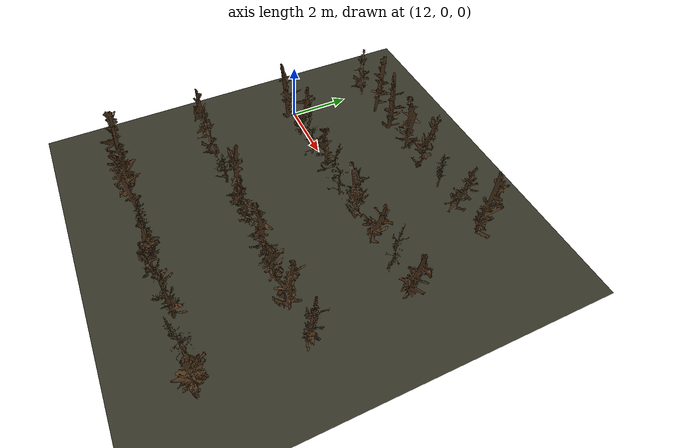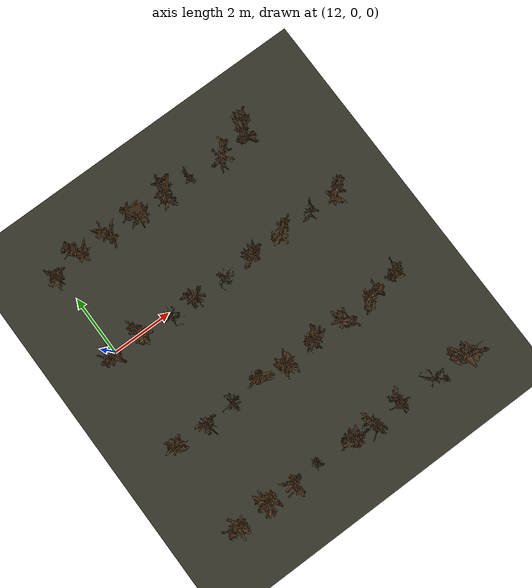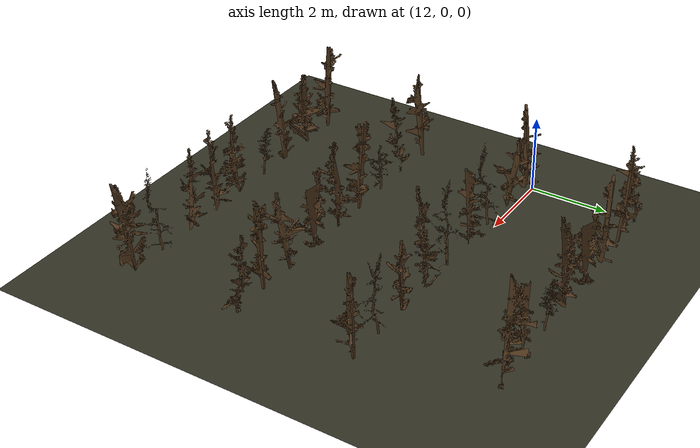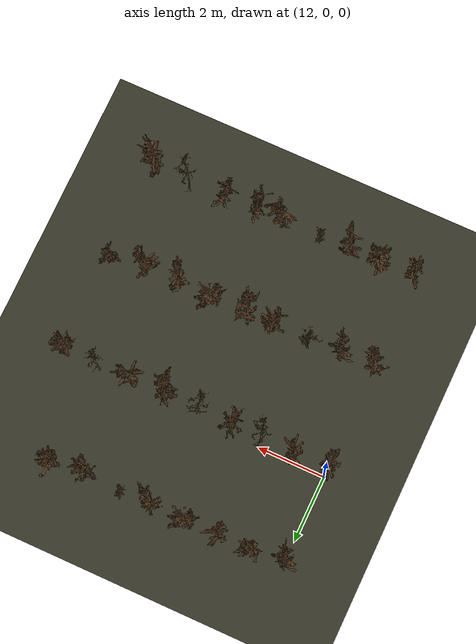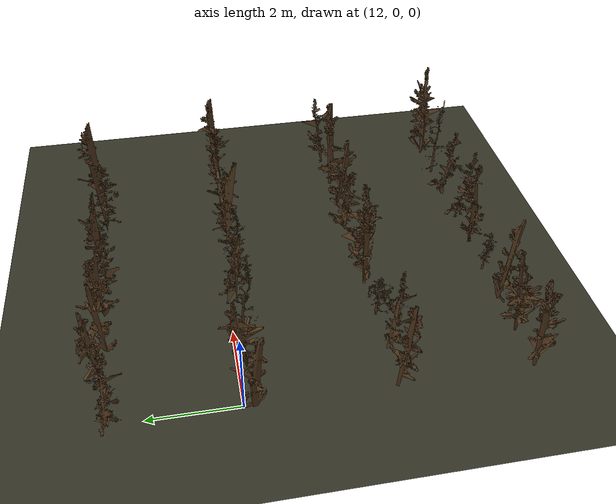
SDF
<sdf version="1.9">
 <world name="orchard_dormant_world">
  <model name="ground_plane">
   <static>true</static>
   <link name="link">
    <collision name="collision">
     <geometry><plane><normal>0 0 1</normal><size>500 500</size></plane></geometry>
    </collision>
    <visual name="visual">
     <geometry><plane><normal>0 0 1</normal><size>500 500</size></plane></geometry>
     <material><ambient>0.2 0.2 0.15 1</ambient><diffuse>0.2 0.2 0.15 1</diffuse></material>
    </visual>
   </link>
  </model>
  <model name="tree250">
   <static>true</static>
   <pose>19.000 2.800 -0.1 0 0 3.817</pose>
   <link name="link">
    <collision name="collision">
     <geometry>
      <mesh>
       <uri>file:///home/administrator/ros2/orchard_navigation_rl_ws/src/orchard_worlds/models/orchard_model/tree3_collision.stl</uri>
      </mesh>
     </geometry>
    </collision>
    <visual name="visual">
     <geometry>
      <mesh>
       <uri>file:///home/administrator/ros2/orchard_navigation_rl_ws/src/orchard_worlds/models/orchard_model/tree3.stl</uri>
      </mesh>
     </geometry>
     <material><ambient>0.3 0.2 0.1 1</ambient><diffuse>0.3 0.2 0.1 1</diffuse></material>
    </visual>
   </link>
  </model>
  <model name="tree251">
   <static>true</static>
   <pose>18.000 2.800 -0.1 0 0 1.763</pose>
   <link name="link">
    <collision name="collision">
     <geometry>
      <mesh>
       <uri>file:///home/administrator/ros2/orchard_navigation_rl_ws/src/orchard_worlds/models/orchard_model/tree1_collision.stl</uri>
      </mesh>
     </geometry>
    </collision>
    <visual name="visual">
     <geometry>
      <mesh>
       <uri>file:///home/administrator/ros2/orchard_navigation_rl_ws/src/orchard_worlds/models/orchard_model/tree1.stl</uri>
      </mesh>
     </geometry>
     <material><ambient>0.3 0.2 0.1 1</ambient><diffuse>0.3 0.2 0.1 1</diffuse></material>
    </visual>
   </link>
  </model>
  <model name="tree252">
   <static>true</static>
   <pose>17.000 2.800 -0.1 0 0 5.477</pose>
   <link name="link">
    <collision name="collision">
     <geometry>
      <mesh>
       <uri>file:///home/administrator/ros2/orchard_navigation_rl_ws/src/orchard_worlds/models/orchard_model/tree4_collision.stl</uri>
      </mesh>
     </geometry>
    </collision>
    <visual name="visual">
     <geometry>
      <mesh>
       <uri>file:///home/administrator/ros2/orchard_navigation_rl_ws/src/orchard_worlds/models/orchard_model/tree4.stl</uri>
      </mesh>
     </geometry>
     <material><ambient>0.3 0.2 0.1 1</ambient><diffuse>0.3 0.2 0.1 1</diffuse></material>
    </visual>
   </link>
  </model>
  <model name="tree253">
   <static>true</static>
   <pose>16.000 2.800 -0.1 0 0 1.793</pose>
   <link name="link">
    <collision name="collision">
     <geometry>
      <mesh>
       <uri>file:///home/administrator/ros2/orchard_navigation_rl_ws/src/orchard_worlds/models/orchard_model/tree5_collision.stl</uri>
      </mesh>
     </geometry>
    </collision>
    <visual name="visual">
     <geometry>
      <mesh>
       <uri>file:///home/administrator/ros2/orchard_navigation_rl_ws/src/orchard_worlds/models/orchard_model/tree5.stl</uri>
      </mesh>
     </geometry>
     <material><ambient>0.3 0.2 0.1 1</ambient><diffuse>0.3 0.2 0.1 1</diffuse></material>
    </visual>
   </link>
  </model>
  <model name="tree254">
   <static>true</static>
   <pose>15.000 2.800 -0.1 0 0 5.613</pose>
   <link name="link">
    <collision name="collision">
     <geometry>
      <mesh>
       <uri>file:///home/administrator/ros2/orchard_navigation_rl_ws/src/orchard_worlds/models/orchard_model/tree11_collision.stl</uri>
      </mesh>
     </geometry>
    </collision>
    <visual name="visual">
     <geometry>
      <mesh>
       <uri>file:///home/administrator/ros2/orchard_navigation_rl_ws/src/orchard_worlds/models/orchard_model/tree11.stl</uri>
      </mesh>
     </geometry>
     <material><ambient>0.3 0.2 0.1 1</ambient><diffuse>0.3 0.2 0.1 1</diffuse></material>
    </visual>
   </link>
  </model>
  <model name="tree255">
   <static>true</static>
   <pose>14.000 2.800 -0.1 0 0 5.559</pose>
   <link name="link">
    <collision name="collision">
     <geometry>
      <mesh>
       <uri>file:///home/administrator/ros2/orchard_navigation_rl_ws/src/orchard_worlds/models/orchard_model/tree13_collision.stl</uri>
      </mesh>
     </geometry>
    </collision>
    <visual name="visual">
     <geometry>
      <mesh>
       <uri>file:///home/administrator/ros2/orchard_navigation_rl_ws/src/orchard_worlds/models/orchard_model/tree13.stl</uri>
      </mesh>
     </geometry>
     <material><ambient>0.3 0.2 0.1 1</ambient><diffuse>0.3 0.2 0.1 1</diffuse></material>
    </visual>
   </link>
  </model>
  <model name="tree256">
   <static>true</static>
   <pose>13.000 2.800 -0.1 0 0 5.093</pose>
   <link name="link">
    <collision name="collision">
     <geometry>
      <mesh>
       <uri>file:///home/administrator/ros2/orchard_navigation_rl_ws/src/orchard_worlds/models/orchard_model/tree15_collision.stl</uri>
      </mesh>
     </geometry>
    </collision>
    <visual name="visual">
     <geometry>
      <mesh>
       <uri>file:///home/administrator/ros2/orchard_navigation_rl_ws/src/orchard_worlds/models/orchard_model/tree15.stl</uri>
      </mesh>
     </geometry>
     <material><ambient>0.3 0.2 0.1 1</ambient><diffuse>0.3 0.2 0.1 1</diffuse></material>
    </visual>
   </link>
  </model>
  <model name="tree257">
   <static>true</static>
   <pose>12.000 2.800 -0.1 0 0 1.129</pose>
   <link name="link">
    <collision name="collision">
     <geometry>
      <mesh>
       <uri>file:///home/administrator/ros2/orchard_navigation_rl_ws/src/orchard_worlds/models/orchard_model/tree2_collision.stl</uri>
      </mesh>
     </geometry>
    </collision>
    <visual name="visual">
     <geometry>
      <mesh>
       <uri>file:///home/administrator/ros2/orchard_navigation_rl_ws/src/orchard_worlds/models/orchard_model/tree2.stl</uri>
      </mesh>
     </geometry>
     <material><ambient>0.3 0.2 0.1 1</ambient><diffuse>0.3 0.2 0.1 1</diffuse></material>
    </visual>
   </link>
  </model>
  <model name="tree277">
   <static>true</static>
   <pose>20.000 -0.200 -0.1 0 0 3.130</pose>
   <link name="link">
    <collision name="collision">
     <geometry>
      <mesh>
       <uri>file:///home/administrator/ros2/orchard_navigation_rl_ws/src/orchard_worlds/models/orchard_model/tree15_collision.stl</uri>
      </mesh>
     </geometry>
    </collision>
    <visual name="visual">
     <geometry>
      <mesh>
       <uri>file:///home/administrator/ros2/orchard_navigation_rl_ws/src/orchard_worlds/models/orchard_model/tree15.stl</uri>
      </mesh>
     </geometry>
     <material><ambient>0.3 0.2 0.1 1</ambient><diffuse>0.3 0.2 0.1 1</diffuse></material>
    </visual>
   </link>
  </model>
  <model name="tree278">
   <static>true</static>
   <pose>19.000 -0.200 -0.1 0 0 3.643</pose>
   <link name="link">
    <collision name="collision">
     <geometry>
      <mesh>
       <uri>file:///home/administrator/ros2/orchard_navigation_rl_ws/src/orchard_worlds/models/orchard_model/tree16_collision.stl</uri>
      </mesh>
     </geometry>
    </collision>
    <visual name="visual">
     <geometry>
      <mesh>
       <uri>file:///home/administrator/ros2/orchard_navigation_rl_ws/src/orchard_worlds/models/orchard_model/tree16.stl</uri>
      </mesh>
     </geometry>
     <material><ambient>0.3 0.2 0.1 1</ambient><diffuse>0.3 0.2 0.1 1</diffuse></material>
    </visual>
   </link>
  </model>
  <model name="tree279">
   <static>true</static>
   <pose>18.000 -0.200 -0.1 0 0 2.620</pose>
   <link name="link">
    <collision name="collision">
     <geometry>
      <mesh>
       <uri>file:///home/administrator/ros2/orchard_navigation_rl_ws/src/orchard_worlds/models/orchard_model/tree8_collision.stl</uri>
      </mesh>
     </geometry>
    </collision>
    <visual name="visual">
     <geometry>
      <mesh>
       <uri>file:///home/administrator/ros2/orchard_navigation_rl_ws/src/orchard_worlds/models/orchard_model/tree8.stl</uri>
      </mesh>
     </geometry>
     <material><ambient>0.3 0.2 0.1 1</ambient><diffuse>0.3 0.2 0.1 1</diffuse></material>
    </visual>
   </link>
  </model>
  <model name="tree280">
   <static>true</static>
   <pose>17.000 -0.200 -0.1 0 0 0.137</pose>
   <link name="link">
    <collision name="collision">
     <geometry>
      <mesh>
       <uri>file:///home/administrator/ros2/orchard_navigation_rl_ws/src/orchard_worlds/models/orchard_model/tree5_collision.stl</uri>
      </mesh>
     </geometry>
    </collision>
    <visual name="visual">
     <geometry>
      <mesh>
       <uri>file:///home/administrator/ros2/orchard_navigation_rl_ws/src/orchard_worlds/models/orchard_model/tree5.stl</uri>
      </mesh>
     </geometry>
     <material><ambient>0.3 0.2 0.1 1</ambient><diffuse>0.3 0.2 0.1 1</diffuse></material>
    </visual>
   </link>
  </model>
  <model name="tree281">
   <static>true</static>
   <pose>16.000 -0.200 -0.1 0 0 5.938</pose>
   <link name="link">
    <collision name="collision">
     <geometry>
      <mesh>
       <uri>file:///home/administrator/ros2/orchard_navigation_rl_ws/src/orchard_worlds/models/orchard_model/tree9_collision.stl</uri>
      </mesh>
     </geometry>
    </collision>
    <visual name="visual">
     <geometry>
      <mesh>
       <uri>file:///home/administrator/ros2/orchard_navigation_rl_ws/src/orchard_worlds/models/orchard_model/tree9.stl</uri>
      </mesh>
     </geometry>
     <material><ambient>0.3 0.2 0.1 1</ambient><diffuse>0.3 0.2 0.1 1</diffuse></material>
    </visual>
   </link>
  </model>
  <model name="tree282">
   <static>true</static>
   <pose>15.000 -0.200 -0.1 0 0 5.526</pose>
   <link name="link">
    <collision name="collision">
     <geometry>
      <mesh>
       <uri>file:///home/administrator/ros2/orchard_navigation_rl_ws/src/orchard_worlds/models/orchard_model/tree1_collision.stl</uri>
      </mesh>
     </geometry>
    </collision>
    <visual name="visual">
     <geometry>
      <mesh>
       <uri>file:///home/administrator/ros2/orchard_navigation_rl_ws/src/orchard_worlds/models/orchard_model/tree1.stl</uri>
      </mesh>
     </geometry>
     <material><ambient>0.3 0.2 0.1 1</ambient><diffuse>0.3 0.2 0.1 1</diffuse></material>
    </visual>
   </link>
  </model>
  <model name="tree283">
   <static>true</static>
   <pose>14.000 -0.200 -0.1 0 0 0.678</pose>
   <link name="link">
    <collision name="collision">
     <geometry>
      <mesh>
       <uri>file:///home/administrator/ros2/orchard_navigation_rl_ws/src/orchard_worlds/models/orchard_model/tree9_collision.stl</uri>
      </mesh>
     </geometry>
    </collision>
    <visual name="visual">
     <geometry>
      <mesh>
       <uri>file:///home/administrator/ros2/orchard_navigation_rl_ws/src/orchard_worlds/models/orchard_model/tree9.stl</uri>
      </mesh>
     </geometry>
     <material><ambient>0.3 0.2 0.1 1</ambient><diffuse>0.3 0.2 0.1 1</diffuse></material>
    </visual>
   </link>
  </model>
  <model name="tree284">
   <static>true</static>
   <pose>13.000 -0.200 -0.1 0 0 3.822</pose>
   <link name="link">
    <collision name="collision">
     <geometry>
      <mesh>
       <uri>file:///home/administrator/ros2/orchard_navigation_rl_ws/src/orchard_worlds/models/orchard_model/tree8_collision.stl</uri>
      </mesh>
     </geometry>
    </collision>
    <visual name="visual">
     <geometry>
      <mesh>
       <uri>file:///home/administrator/ros2/orchard_navigation_rl_ws/src/orchard_worlds/models/orchard_model/tree8.stl</uri>
      </mesh>
     </geometry>
     <material><ambient>0.3 0.2 0.1 1</ambient><diffuse>0.3 0.2 0.1 1</diffuse></material>
    </visual>
   </link>
  </model>
  <model name="tree285">
   <static>true</static>
   <pose>12.000 -0.200 -0.1 0 0 0.065</pose>
   <link name="link">
    <collision name="collision">
     <geometry>
      <mesh>
       <uri>file:///home/administrator/ros2/orchard_navigation_rl_ws/src/orchard_worlds/models/orchard_model/tree13_collision.stl</uri>
      </mesh>
     </geometry>
    </collision>
    <visual name="visual">
     <geometry>
      <mesh>
       <uri>file:///home/administrator/ros2/orchard_navigation_rl_ws/src/orchard_worlds/models/orchard_model/tree13.stl</uri>
      </mesh>
     </geometry>
     <material><ambient>0.3 0.2 0.1 1</ambient><diffuse>0.3 0.2 0.1 1</diffuse></material>
    </visual>
   </link>
  </model>
  <model name="tree305">
   <static>true</static>
   <pose>20.000 -3.250 -0.1 0 0 3.912</pose>
   <link name="link">
    <collision name="collision">
     <geometry>
      <mesh>
       <uri>file:///home/administrator/ros2/orchard_navigation_rl_ws/src/orchard_worlds/models/orchard_model/tree2_collision.stl</uri>
      </mesh>
     </geometry>
    </collision>
    <visual name="visual">
     <geometry>
      <mesh>
       <uri>file:///home/administrator/ros2/orchard_navigation_rl_ws/src/orchard_worlds/models/orchard_model/tree2.stl</uri>
      </mesh>
     </geometry>
     <material><ambient>0.3 0.2 0.1 1</ambient><diffuse>0.3 0.2 0.1 1</diffuse></material>
    </visual>
   </link>
  </model>
  <model name="tree306">
   <static>true</static>
   <pose>19.000 -3.250 -0.1 0 0 2.578</pose>
   <link name="link">
    <collision name="collision">
     <geometry>
      <mesh>
       <uri>file:///home/administrator/ros2/orchard_navigation_rl_ws/src/orchard_worlds/models/orchard_model/tree6_collision.stl</uri>
      </mesh>
     </geometry>
    </collision>
    <visual name="visual">
     <geometry>
      <mesh>
       <uri>file:///home/administrator/ros2/orchard_navigation_rl_ws/src/orchard_worlds/models/orchard_model/tree6.stl</uri>
      </mesh>
     </geometry>
     <material><ambient>0.3 0.2 0.1 1</ambient><diffuse>0.3 0.2 0.1 1</diffuse></material>
    </visual>
   </link>
  </model>
  <model name="tree307">
   <static>true</static>
   <pose>18.000 -3.250 -0.1 0 0 0.974</pose>
   <link name="link">
    <collision name="collision">
     <geometry>
      <mesh>
       <uri>file:///home/administrator/ros2/orchard_navigation_rl_ws/src/orchard_worlds/models/orchard_model/tree8_collision.stl</uri>
      </mesh>
     </geometry>
    </collision>
    <visual name="visual">
     <geometry>
      <mesh>
       <uri>file:///home/administrator/ros2/orchard_navigation_rl_ws/src/orchard_worlds/models/orchard_model/tree8.stl</uri>
      </mesh>
     </geometry>
     <material><ambient>0.3 0.2 0.1 1</ambient><diffuse>0.3 0.2 0.1 1</diffuse></material>
    </visual>
   </link>
  </model>
  <model name="tree308">
   <static>true</static>
   <pose>17.000 -3.250 -0.1 0 0 5.836</pose>
   <link name="link">
    <collision name="collision">
     <geometry>
      <mesh>
       <uri>file:///home/administrator/ros2/orchard_navigation_rl_ws/src/orchard_worlds/models/orchard_model/tree11_collision.stl</uri>
      </mesh>
     </geometry>
    </collision>
    <visual name="visual">
     <geometry>
      <mesh>
       <uri>file:///home/administrator/ros2/orchard_navigation_rl_ws/src/orchard_worlds/models/orchard_model/tree11.stl</uri>
      </mesh>
     </geometry>
     <material><ambient>0.3 0.2 0.1 1</ambient><diffuse>0.3 0.2 0.1 1</diffuse></material>
    </visual>
   </link>
  </model>
  <model name="tree309">
   <static>true</static>
   <pose>16.000 -3.250 -0.1 0 0 0.172</pose>
   <link name="link">
    <collision name="collision">
     <geometry>
      <mesh>
       <uri>file:///home/administrator/ros2/orchard_navigation_rl_ws/src/orchard_worlds/models/orchard_model/tree10_collision.stl</uri>
      </mesh>
     </geometry>
    </collision>
    <visual name="visual">
     <geometry>
      <mesh>
       <uri>file:///home/administrator/ros2/orchard_navigation_rl_ws/src/orchard_worlds/models/orchard_model/tree10.stl</uri>
      </mesh>
     </geometry>
     <material><ambient>0.3 0.2 0.1 1</ambient><diffuse>0.3 0.2 0.1 1</diffuse></material>
    </visual>
   </link>
  </model>
  <model name="tree310">
   <static>true</static>
   <pose>15.000 -3.250 -0.1 0 0 4.449</pose>
   <link name="link">
    <collision name="collision">
     <geometry>
      <mesh>
       <uri>file:///home/administrator/ros2/orchard_navigation_rl_ws/src/orchard_worlds/models/orchard_model/tree6_collision.stl</uri>
      </mesh>
     </geometry>
    </collision>
    <visual name="visual">
     <geometry>
      <mesh>
       <uri>file:///home/administrator/ros2/orchard_navigation_rl_ws/src/orchard_worlds/models/orchard_model/tree6.stl</uri>
      </mesh>
     </geometry>
     <material><ambient>0.3 0.2 0.1 1</ambient><diffuse>0.3 0.2 0.1 1</diffuse></material>
    </visual>
   </link>
  </model>
  <model name="tree311">
   <static>true</static>
   <pose>14.000 -3.250 -0.1 0 0 2.414</pose>
   <link name="link">
    <collision name="collision">
     <geometry>
      <mesh>
       <uri>file:///home/administrator/ros2/orchard_navigation_rl_ws/src/orchard_worlds/models/orchard_model/tree14_collision.stl</uri>
      </mesh>
     </geometry>
    </collision>
    <visual name="visual">
     <geometry>
      <mesh>
       <uri>file:///home/administrator/ros2/orchard_navigation_rl_ws/src/orchard_worlds/models/orchard_model/tree14.stl</uri>
      </mesh>
     </geometry>
     <material><ambient>0.3 0.2 0.1 1</ambient><diffuse>0.3 0.2 0.1 1</diffuse></material>
    </visual>
   </link>
  </model>
  <model name="tree312">
   <static>true</static>
   <pose>13.000 -3.250 -0.1 0 0 1.120</pose>
   <link name="link">
    <collision name="collision">
     <geometry>
      <mesh>
       <uri>file:///home/administrator/ros2/orchard_navigation_rl_ws/src/orchard_worlds/models/orchard_model/tree2_collision.stl</uri>
      </mesh>
     </geometry>
    </collision>
    <visual name="visual">
     <geometry>
      <mesh>
       <uri>file:///home/administrator/ros2/orchard_navigation_rl_ws/src/orchard_worlds/models/orchard_model/tree2.stl</uri>
      </mesh>
     </geometry>
     <material><ambient>0.3 0.2 0.1 1</ambient><diffuse>0.3 0.2 0.1 1</diffuse></material>
    </visual>
   </link>
  </model>
  <model name="tree313">
   <static>true</static>
   <pose>12.000 -3.250 -0.1 0 0 1.548</pose>
   <link name="link">
    <collision name="collision">
     <geometry>
      <mesh>
       <uri>file:///home/administrator/ros2/orchard_navigation_rl_ws/src/orchard_worlds/models/orchard_model/tree15_collision.stl</uri>
      </mesh>
     </geometry>
    </collision>
    <visual name="visual">
     <geometry>
      <mesh>
       <uri>file:///home/administrator/ros2/orchard_navigation_rl_ws/src/orchard_worlds/models/orchard_model/tree15.stl</uri>
      </mesh>
     </geometry>
     <material><ambient>0.3 0.2 0.1 1</ambient><diffuse>0.3 0.2 0.1 1</diffuse></material>
    </visual>
   </link>
  </model>
  <model name="tree333">
   <static>true</static>
   <pose>20.000 -6.200 -0.1 0 0 2.568</pose>
   <link name="link">
    <collision name="collision">
     <geometry>
      <mesh>
       <uri>file:///home/administrator/ros2/orchard_navigation_rl_ws/src/orchard_worlds/models/orchard_model/tree7_collision.stl</uri>
      </mesh>
     </geometry>
    </collision>
    <visual name="visual">
     <geometry>
      <mesh>
       <uri>file:///home/administrator/ros2/orchard_navigation_rl_ws/src/orchard_worlds/models/orchard_model/tree7.stl</uri>
      </mesh>
     </geometry>
     <material><ambient>0.3 0.2 0.1 1</ambient><diffuse>0.3 0.2 0.1 1</diffuse></material>
    </visual>
   </link>
  </model>
  <model name="tree334">
   <static>true</static>
   <pose>19.000 -6.200 -0.1 0 0 1.358</pose>
   <link name="link">
    <collision name="collision">
     <geometry>
      <mesh>
       <uri>file:///home/administrator/ros2/orchard_navigation_rl_ws/src/orchard_worlds/models/orchard_model/tree9_collision.stl</uri>
      </mesh>
     </geometry>
    </collision>
    <visual name="visual">
     <geometry>
      <mesh>
       <uri>file:///home/administrator/ros2/orchard_navigation_rl_ws/src/orchard_worlds/models/orchard_model/tree9.stl</uri>
      </mesh>
     </geometry>
     <material><ambient>0.3 0.2 0.1 1</ambient><diffuse>0.3 0.2 0.1 1</diffuse></material>
    </visual>
   </link>
  </model>
  <model name="tree335">
   <static>true</static>
   <pose>18.000 -6.200 -0.1 0 0 5.467</pose>
   <link name="link">
    <collision name="collision">
     <geometry>
      <mesh>
       <uri>file:///home/administrator/ros2/orchard_navigation_rl_ws/src/orchard_worlds/models/orchard_model/tree2_collision.stl</uri>
      </mesh>
     </geometry>
    </collision>
    <visual name="visual">
     <geometry>
      <mesh>
       <uri>file:///home/administrator/ros2/orchard_navigation_rl_ws/src/orchard_worlds/models/orchard_model/tree2.stl</uri>
      </mesh>
     </geometry>
     <material><ambient>0.3 0.2 0.1 1</ambient><diffuse>0.3 0.2 0.1 1</diffuse></material>
    </visual>
   </link>
  </model>
  <model name="tree336">
   <static>true</static>
   <pose>17.000 -6.200 -0.1 0 0 6.218</pose>
   <link name="link">
    <collision name="collision">
     <geometry>
      <mesh>
       <uri>file:///home/administrator/ros2/orchard_navigation_rl_ws/src/orchard_worlds/models/orchard_model/tree2_collision.stl</uri>
      </mesh>
     </geometry>
    </collision>
    <visual name="visual">
     <geometry>
      <mesh>
       <uri>file:///home/administrator/ros2/orchard_navigation_rl_ws/src/orchard_worlds/models/orchard_model/tree2.stl</uri>
      </mesh>
     </geometry>
     <material><ambient>0.3 0.2 0.1 1</ambient><diffuse>0.3 0.2 0.1 1</diffuse></material>
    </visual>
   </link>
  </model>
  <model name="tree337">
   <static>true</static>
   <pose>16.000 -6.200 -0.1 0 0 2.376</pose>
   <link name="link">
    <collision name="collision">
     <geometry>
      <mesh>
       <uri>file:///home/administrator/ros2/orchard_navigation_rl_ws/src/orchard_worlds/models/orchard_model/tree10_collision.stl</uri>
      </mesh>
     </geometry>
    </collision>
    <visual name="visual">
     <geometry>
      <mesh>
       <uri>file:///home/administrator/ros2/orchard_navigation_rl_ws/src/orchard_worlds/models/orchard_model/tree10.stl</uri>
      </mesh>
     </geometry>
     <material><ambient>0.3 0.2 0.1 1</ambient><diffuse>0.3 0.2 0.1 1</diffuse></material>
    </visual>
   </link>
  </model>
  <model name="tree338">
   <static>true</static>
   <pose>15.000 -6.200 -0.1 0 0 5.528</pose>
   <link name="link">
    <collision name="collision">
     <geometry>
      <mesh>
       <uri>file:///home/administrator/ros2/orchard_navigation_rl_ws/src/orchard_worlds/models/orchard_model/tree4_collision.stl</uri>
      </mesh>
     </geometry>
    </collision>
    <visual name="visual">
     <geometry>
      <mesh>
       <uri>file:///home/administrator/ros2/orchard_navigation_rl_ws/src/orchard_worlds/models/orchard_model/tree4.stl</uri>
      </mesh>
     </geometry>
     <material><ambient>0.3 0.2 0.1 1</ambient><diffuse>0.3 0.2 0.1 1</diffuse></material>
    </visual>
   </link>
  </model>
  <model name="tree339">
   <static>true</static>
   <pose>14.000 -6.200 -0.1 0 0 1.191</pose>
   <link name="link">
    <collision name="collision">
     <geometry>
      <mesh>
       <uri>file:///home/administrator/ros2/orchard_navigation_rl_ws/src/orchard_worlds/models/orchard_model/tree13_collision.stl</uri>
      </mesh>
     </geometry>
    </collision>
    <visual name="visual">
     <geometry>
      <mesh>
       <uri>file:///home/administrator/ros2/orchard_navigation_rl_ws/src/orchard_worlds/models/orchard_model/tree13.stl</uri>
      </mesh>
     </geometry>
     <material><ambient>0.3 0.2 0.1 1</ambient><diffuse>0.3 0.2 0.1 1</diffuse></material>
    </visual>
   </link>
  </model>
  <model name="tree340">
   <static>true</static>
   <pose>13.000 -6.200 -0.1 0 0 3.131</pose>
   <link name="link">
    <collision name="collision">
     <geometry>
      <mesh>
       <uri>file:///home/administrator/ros2/orchard_navigation_rl_ws/src/orchard_worlds/models/orchard_model/tree12_collision.stl</uri>
      </mesh>
     </geometry>
    </collision>
    <visual name="visual">
     <geometry>
      <mesh>
       <uri>file:///home/administrator/ros2/orchard_navigation_rl_ws/src/orchard_worlds/models/orchard_model/tree12.stl</uri>
      </mesh>
     </geometry>
     <material><ambient>0.3 0.2 0.1 1</ambient><diffuse>0.3 0.2 0.1 1</diffuse></material>
    </visual>
   </link>
  </model>
  <model name="tree341">
   <static>true</static>
   <pose>12.000 -6.200 -0.1 0 0 3.526</pose>
   <link name="link">
    <collision name="collision">
     <geometry>
      <mesh>
       <uri>file:///home/administrator/ros2/orchard_navigation_rl_ws/src/orchard_worlds/models/orchard_model/tree6_collision.stl</uri>
      </mesh>
     </geometry>
    </collision>
    <visual name="visual">
     <geometry>
      <mesh>
       <uri>file:///home/administrator/ros2/orchard_navigation_rl_ws/src/orchard_worlds/models/orchard_model/tree6.stl</uri>
      </mesh>
     </geometry>
     <material><ambient>0.3 0.2 0.1 1</ambient><diffuse>0.3 0.2 0.1 1</diffuse></material>
    </visual>
   </link>
  </model>
 </world>
</sdf>
